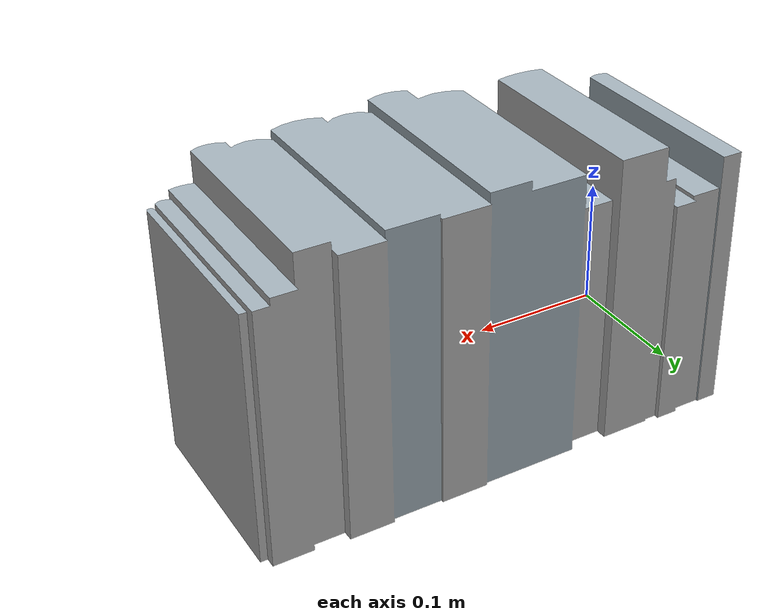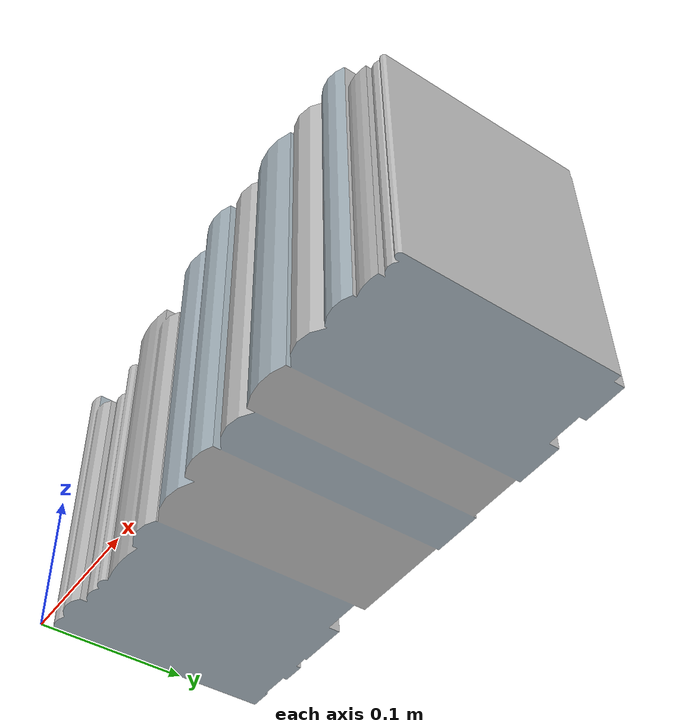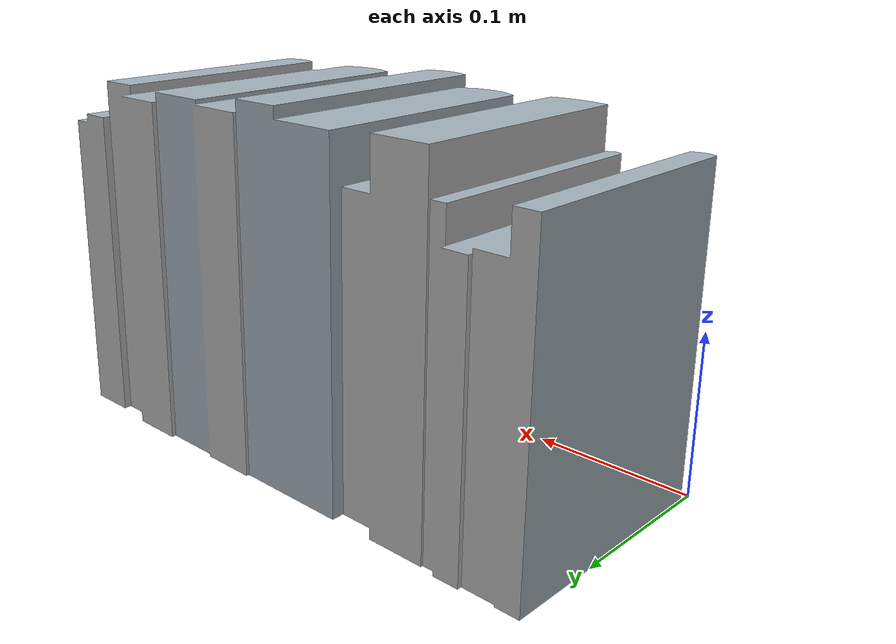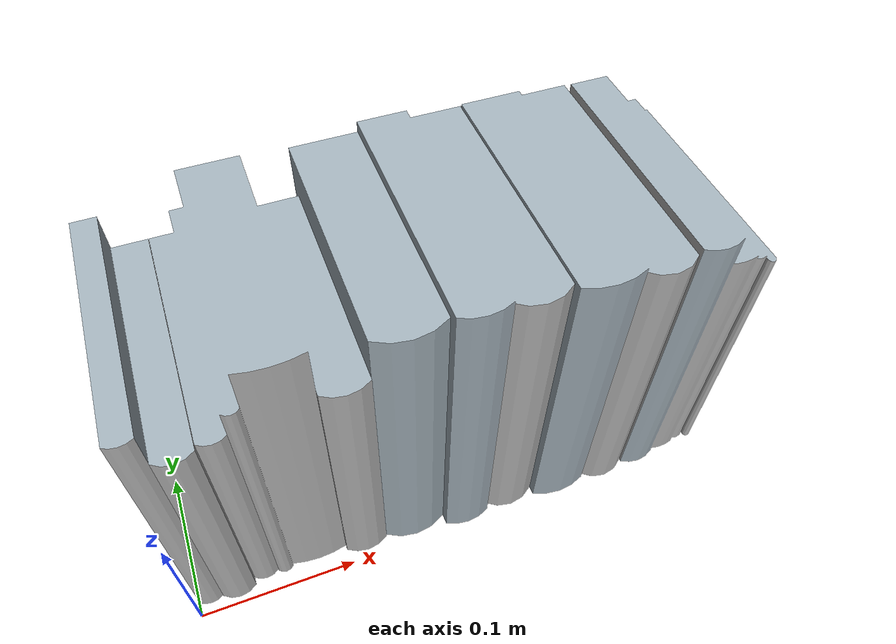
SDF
<?xml version="1.0" ?>
<sdf version="1.5">
  <model name="books">
    <static>true</static>
    <link name="books_link">
        <collision name="books_collision">
         <geometry>
            <mesh>
                <uri>model://books/meshes/model.dae</uri>
            </mesh>
        </geometry>
      </collision>

      <visual name="books_mesh">
        <cast_shadows>true</cast_shadows>
        <geometry>
            <mesh>
                <uri>model://books/meshes/model.dae</uri>
            </mesh>
        </geometry>
      </visual>
    </link>
  </model>
</sdf>
